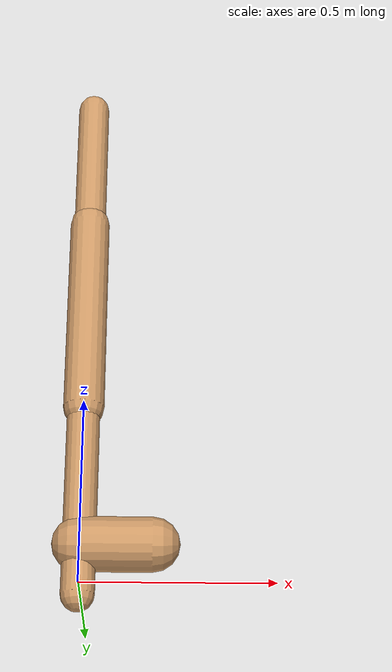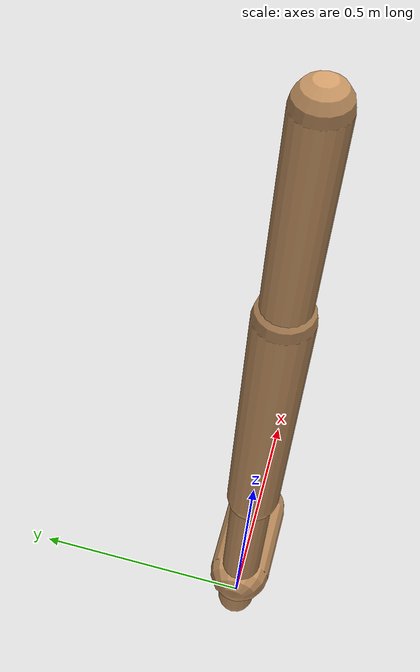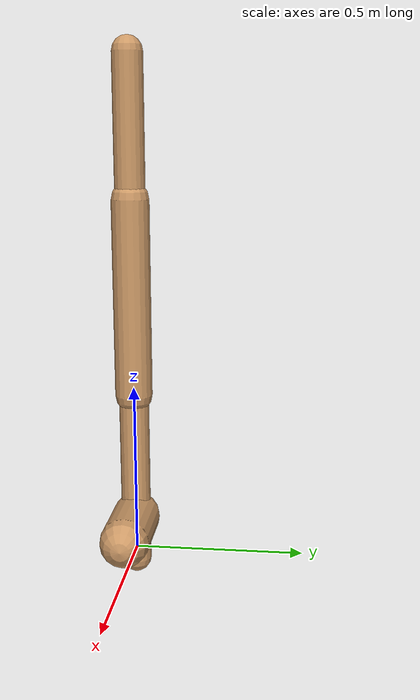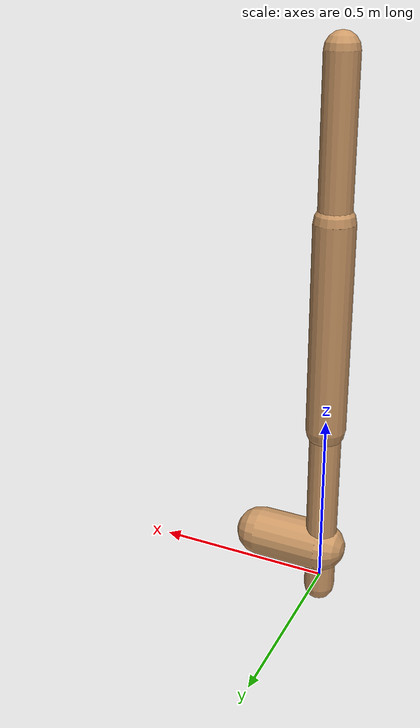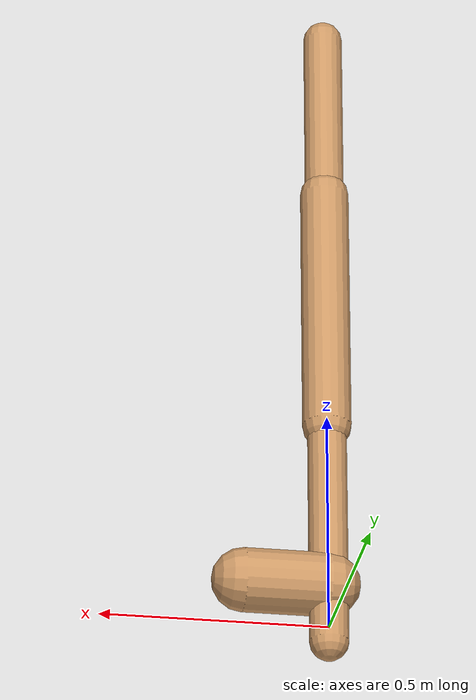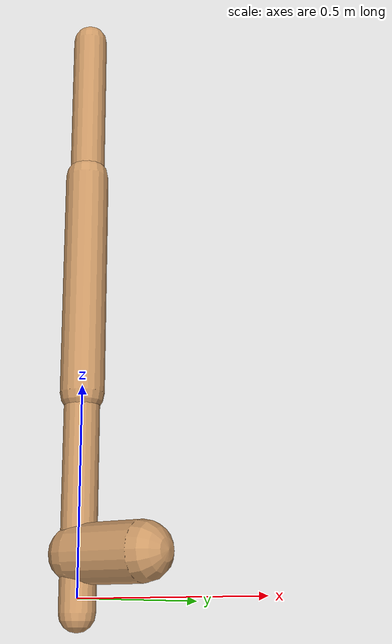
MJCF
<mujoco model="walker2d">
  <compiler angle="degree" coordinate="global" inertiafromgeom="true" />
  <default>
    <joint armature="0.01" damping=".1" limited="true" />
    <geom conaffinity="0" condim="3" contype="1" density="1000" friction="0.8 .1 .1" rgba="0.8 0.6 .4 1" />
  </default>
  <option integrator="RK4" timestep="0.002" />
  <worldbody>

    <body name="torso" pos="0 0 0.25163408844512064">
      <joint armature="0" axis="1 0 0" damping="0" limited="false" name="ignorex" pos="0 0 0" stiffness="0" type="slide" />
      <joint armature="0" axis="0 0 1" damping="0" limited="false" name="ignorez" pos="0 0 0" ref="1.25" stiffness="0" type="slide" />
      <joint armature="0" axis="0 1 0" damping="0" limited="false" name="ignorey" pos="0 0 0" stiffness="0" type="hinge" />
      <geom fromto="0 0 1.45 0 0 1.05" name="torso_geom" size="0.04370635625418008" type="capsule" />
      <body name="thigh">
        <joint axis="0 -1 0" name="thigh_joint" pos="0 0 1.05" range="-150 0" type="hinge" />
        <geom fromto="0.0 0.0 1.05 0.0 0.0 0.48080490547336385" name="thigh_geom" size="0.05441962362182136" type="capsule" />
        <body name="leg" pos="0.0 0.0 -0.11919509452663613">
          <joint axis="0 -1 0" name="leg_joint" pos="0 0 0.6" range="-150 0" type="hinge" />
          <geom fromto="0.0 0.0 0.6 0.0 0.0 -0.03243899391848454" name="leg_geom" size="0.043535698897457085" type="capsule" />
          <body name="foot" pos="0.0 0.0 -0.13243899391848454">
            <joint axis="0 -1 0" name="foot_joint" pos="0 0 0.1" range="-45 45" type="hinge" />
            <geom fromto="0.0 0.0 0.1 0.1864586540669833 0.0 0.1" name="foot_geom" size="0.07029001278597033" type="capsule" />
          </body>
        </body>
      </body>

      <body name="thigh_left">
        <joint axis="0 -1 0" name="thigh_left_joint" pos="0 0 1.05" range="-150 0" type="hinge" />
        <geom fromto="0.0 0.0 1.05 0.0 0.0 0.48080490547336385" name="thigh_left_geom" rgba=".7 .3 .6 1" size="0.05441962362182136" type="capsule" />
        <body name="leg_left" pos="0.0 0.0 -0.11919509452663613">
          <joint axis="0 -1 0" name="leg_left_joint" pos="0 0 0.6" range="-150 0" type="hinge" />
          <geom fromto="0.0 0.0 0.6 0.0 0.0 -0.03243899391848454" name="leg_left_geom" rgba=".7 .3 .6 1" size="0.043535698897457085" type="capsule" />
          <body name="foot_left" pos="0.0 0.0 -0.13243899391848454">
            <joint axis="0 -1 0" name="foot_left_joint" pos="0 0 0.1" range="-45 45" type="hinge" />
            <geom fromto="0.0 0.0 0.1 0.1864586540669833 0.0 0.1" name="foot_left_geom" rgba=".7 .3 .6 1" size="0.07029001278597033" type="capsule" />
          </body>
        </body>
      </body>
    </body>
  </worldbody>
  <actuator>

    <motor ctrllimited="true" ctrlrange="-1.0 1.0" gear="100" joint="thigh_joint" />
    <motor ctrllimited="true" ctrlrange="-1.0 1.0" gear="100" joint="leg_joint" />
    <motor ctrllimited="true" ctrlrange="-1.0 1.0" gear="100" joint="foot_joint" />
    <motor ctrllimited="true" ctrlrange="-1.0 1.0" gear="100" joint="thigh_left_joint" />
    <motor ctrllimited="true" ctrlrange="-1.0 1.0" gear="100" joint="leg_left_joint" />
    <motor ctrllimited="true" ctrlrange="-1.0 1.0" gear="100" joint="foot_left_joint" />

  </actuator>
</mujoco>
